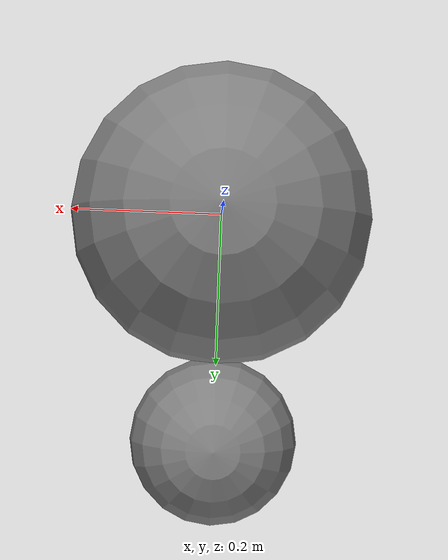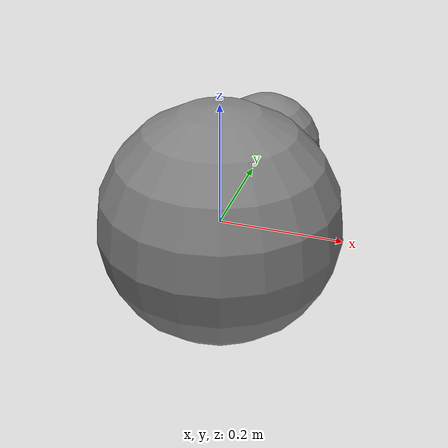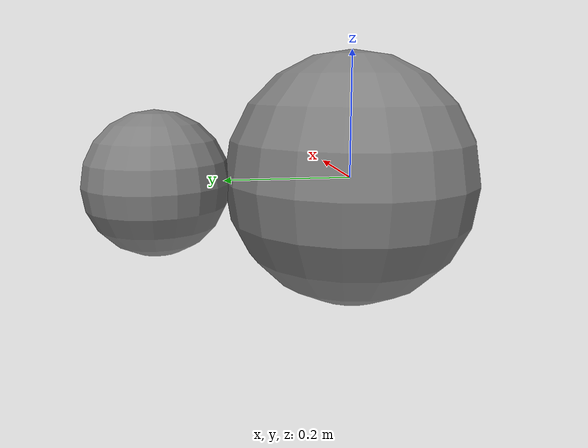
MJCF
<mujoco>
          <worldbody>
            <body>
              <joint type="free"/>
              <geom pos="0 0 0" size="0.2" type="sphere"/>
            </body>
            <body >
              <joint type="free"/>
              <geom pos="0 0.3 0" size="0.11" type="sphere"/>
            </body>
          </worldbody>
        </mujoco>
